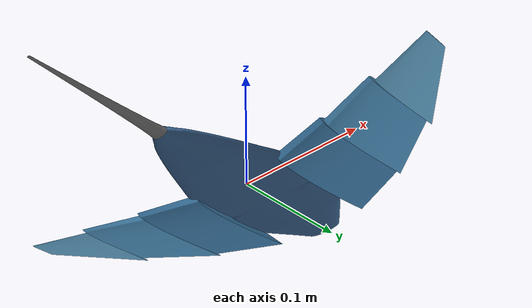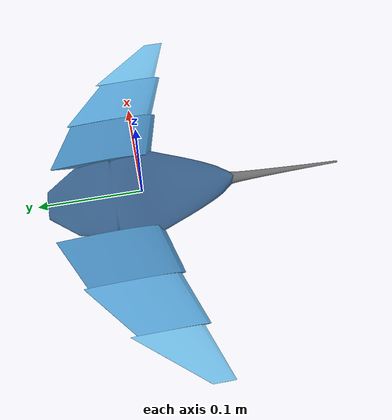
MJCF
<mujoco model="MantaRay3D_Swimmer">

    <compiler angle="degree" inertiafromgeom="true" meshdir="meshes/"/>
    <option timestep="0.01" gravity="0 0 0" integrator="RK4"/>

    <default>
        <joint damping="0.60" stiffness="0" armature="0.12"/>
        <motor ctrlrange="-1 1" ctrllimited="true"/>
        <geom solref="0.002 1" solimp="0.9 0.95 0.001"/>
    </default>

    <asset>
        <material name="body_mat"      rgba="0.22 0.38 0.55 1"/>
        <material name="wing_root_mat" rgba="0.28 0.55 0.75 1"/>
        <material name="wing_mid_mat"  rgba="0.35 0.65 0.85 1"/>
        <material name="wing_tip_mat"  rgba="0.45 0.75 0.92 1"/>
        <material name="tail_mat"      rgba="0.45 0.45 0.45 1"/>

        <mesh name="body_mesh"        file="manta_body.stl"           scale="2 2 2"/>
        <mesh name="wing_root_R_mesh" file="manta_wing_root.stl"      scale="2 2 2"/>
        <mesh name="wing_mid_R_mesh"  file="manta_wing_mid.stl"       scale="2 2 2"/>
        <mesh name="wing_tip_R_mesh"  file="manta_wing_tip.stl"       scale="2 2 2"/>
        <mesh name="wing_root_L_mesh" file="manta_wing_root_L.stl"    scale="2 2 2"/>
        <mesh name="wing_mid_L_mesh"  file="manta_wing_mid_L.stl"     scale="2 2 2"/>
        <mesh name="wing_tip_L_mesh"  file="manta_wing_tip_L.stl"     scale="2 2 2"/>
        <mesh name="tail_mesh"        file="manta_tail.stl"           scale="2 2 2"/>
    </asset>

    <worldbody>
        <body name="body" pos="0 0 0">
            <freejoint name="root_joint"/>

            <geom name="body_geom" type="mesh" mesh="body_mesh"
                  material="body_mat" density="4500"/>

            <!-- ============ RIGHT WING ============ -->
            <!-- Wing Root R: attaches at body right side, chest area -->
            <body name="wing_root_R" pos="0.040 0.016 0">
                <!-- 1 DOF: flap (pitch around Y-axis) -->
                <joint name="wr_R_flap" type="hinge" axis="0 1 0"
                       limited="true" range="-45 45"/>

                <geom name="wr_R_geom" type="mesh" mesh="wing_root_R_mesh"
                      material="wing_root_mat" density="3000"/>

                <!-- Wing Mid R -->
                <body name="wing_mid_R" pos="0.050 -0.012 0">
                    <!-- 2 DOFs: flap + twist -->
                    <joint name="wm_R_flap" type="hinge" axis="0 1 0"
                           limited="true" range="-50 50"/>
                    <joint name="wm_R_twist" type="hinge" axis="1 0 0"
                           limited="true" range="-25 25"/>

                    <geom name="wm_R_geom" type="mesh" mesh="wing_mid_R_mesh"
                          material="wing_mid_mat" density="2200"/>

                    <!-- Wing Tip R -->
                    <body name="wing_tip_R" pos="0.050 -0.018 0">
                        <joint name="wt_R_flap" type="hinge" axis="0 1 0"
                               limited="true" range="-55 55"/>
                        <joint name="wt_R_twist" type="hinge" axis="1 0 0"
                               limited="true" range="-30 30"/>

                        <geom name="wt_R_geom" type="mesh" mesh="wing_tip_R_mesh"
                              material="wing_tip_mat" density="1500"/>

                    </body>
                </body>
            </body>

            <!-- ============ LEFT WING ============ -->
            <body name="wing_root_L" pos="-0.040 0.016 0">
                <joint name="wr_L_flap" type="hinge" axis="0 1 0"
                       limited="true" range="-45 45"/>

                <geom name="wr_L_geom" type="mesh" mesh="wing_root_L_mesh"
                      material="wing_root_mat" density="3000"/>

                <body name="wing_mid_L" pos="-0.050 -0.012 0">
                    <joint name="wm_L_flap" type="hinge" axis="0 1 0"
                           limited="true" range="-50 50"/>
                    <joint name="wm_L_twist" type="hinge" axis="1 0 0"
                           limited="true" range="-25 25"/>

                    <geom name="wm_L_geom" type="mesh" mesh="wing_mid_L_mesh"
                          material="wing_mid_mat" density="2200"/>

                    <body name="wing_tip_L" pos="-0.050 -0.018 0">
                        <joint name="wt_L_flap" type="hinge" axis="0 1 0"
                               limited="true" range="-55 55"/>
                        <joint name="wt_L_twist" type="hinge" axis="1 0 0"
                               limited="true" range="-30 30"/>

                        <geom name="wt_L_geom" type="mesh" mesh="wing_tip_L_mesh"
                              material="wing_tip_mat" density="1500"/>
                    </body>
                </body>
            </body>

            <!-- ============ TAIL ============ -->
            <body name="tail" pos="0 -0.086 0">
                <joint name="tail_yaw" type="hinge" axis="0 0 1"
                       limited="true" range="-40 40"/>

                <geom name="tail_geom" type="mesh" mesh="tail_mesh"
                      material="tail_mat" density="1800"/>

            </body>
        </body>

        <light directional="true" diffuse="0.9 0.9 0.9" pos="0 0 3" dir="0 0 -1"/>
    </worldbody>

    <actuator>
        <!-- Right wing: 1+2+2 = 5 DOFs -->
        <position name="pos_wr_R_flap"  joint="wr_R_flap"  kp="1.8" kv="0.25"
                  ctrlrange="-0.785 0.785" forcerange="-1.2 1.2"/>
        <position name="pos_wm_R_flap"  joint="wm_R_flap"  kp="1.3" kv="0.20"
                  ctrlrange="-0.873 0.873" forcerange="-0.9 0.9"/>
        <position name="pos_wm_R_twist" joint="wm_R_twist" kp="0.9" kv="0.15"
                  ctrlrange="-0.436 0.436" forcerange="-0.6 0.6"/>
        <position name="pos_wt_R_flap"  joint="wt_R_flap"  kp="0.9" kv="0.15"
                  ctrlrange="-0.960 0.960" forcerange="-0.6 0.6"/>
        <position name="pos_wt_R_twist" joint="wt_R_twist" kp="0.6" kv="0.10"
                  ctrlrange="-0.524 0.524" forcerange="-0.35 0.35"/>

        <!-- Left wing: 1+2+2 = 5 DOFs -->
        <position name="pos_wr_L_flap"  joint="wr_L_flap"  kp="1.8" kv="0.25"
                  ctrlrange="-0.785 0.785" forcerange="-1.2 1.2"/>
        <position name="pos_wm_L_flap"  joint="wm_L_flap"  kp="1.3" kv="0.20"
                  ctrlrange="-0.873 0.873" forcerange="-0.9 0.9"/>
        <position name="pos_wm_L_twist" joint="wm_L_twist" kp="0.9" kv="0.15"
                  ctrlrange="-0.436 0.436" forcerange="-0.6 0.6"/>
        <position name="pos_wt_L_flap"  joint="wt_L_flap"  kp="0.9" kv="0.15"
                  ctrlrange="-0.960 0.960" forcerange="-0.6 0.6"/>
        <position name="pos_wt_L_twist" joint="wt_L_twist" kp="0.6" kv="0.10"
                  ctrlrange="-0.524 0.524" forcerange="-0.35 0.35"/>

        <!-- Tail: 1 DOF -->
        <position name="pos_tail_yaw" joint="tail_yaw" kp="1.1" kv="0.18"
                  ctrlrange="-0.698 0.698" forcerange="-0.7 0.7"/>
    </actuator>
</mujoco>
